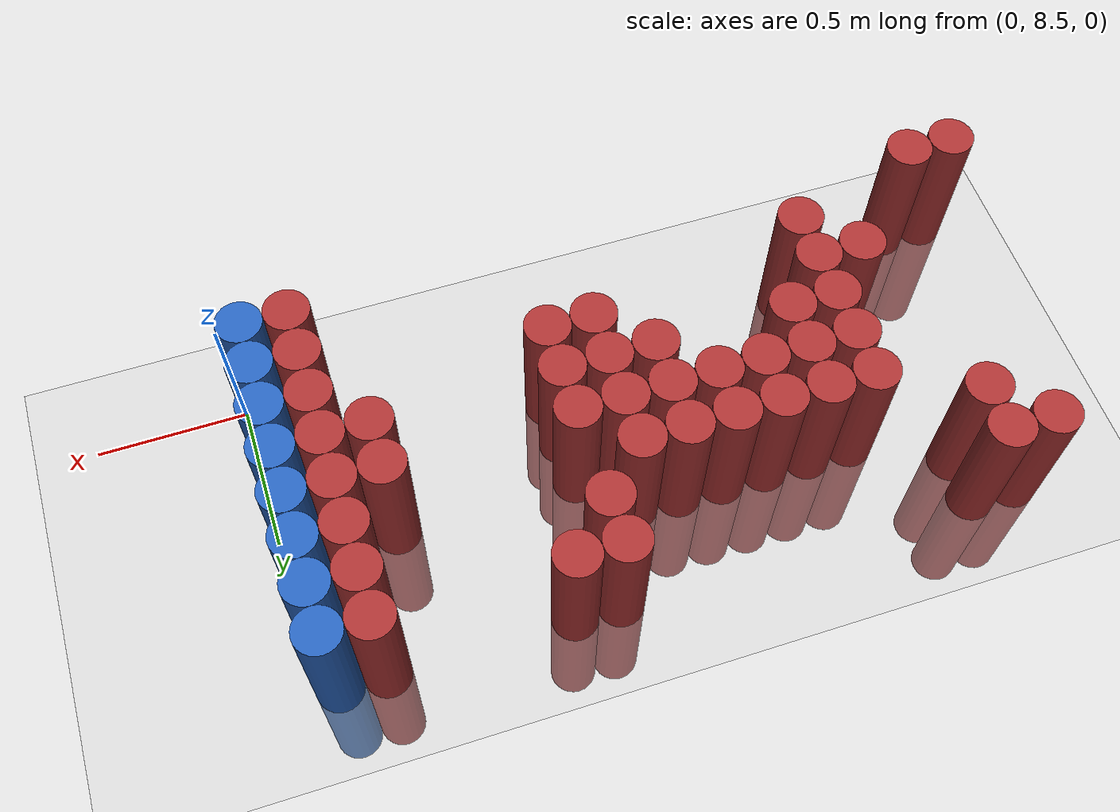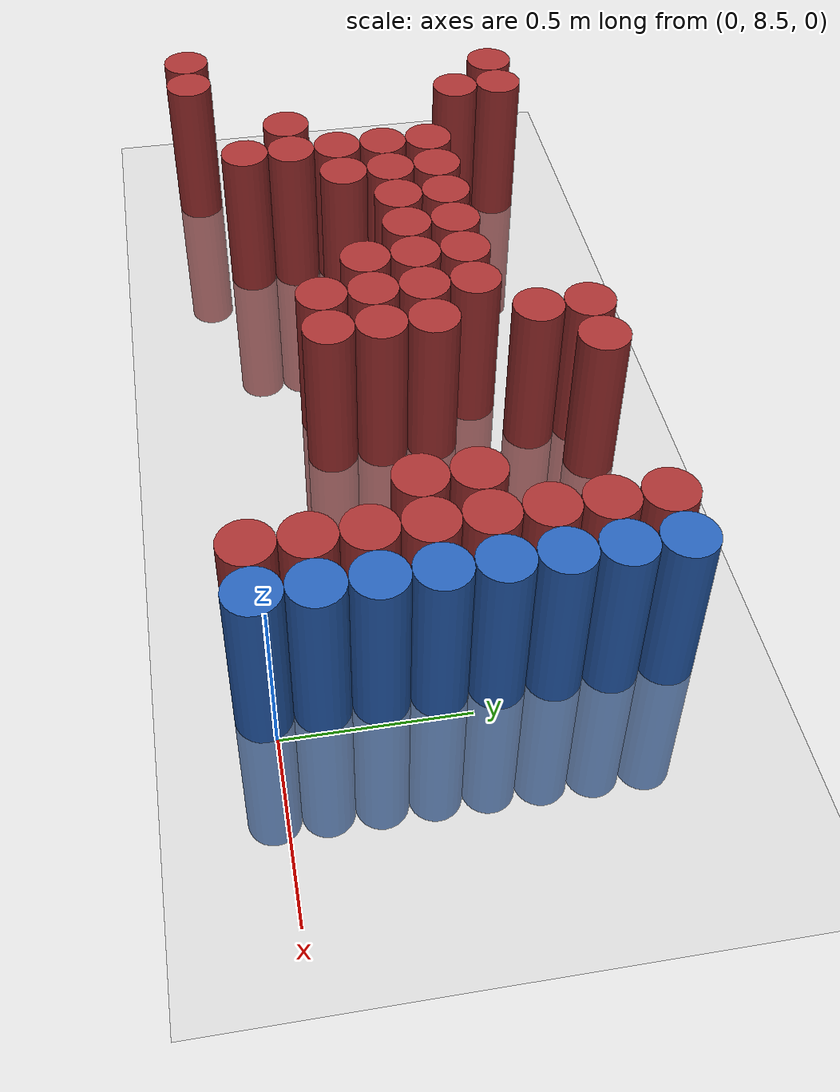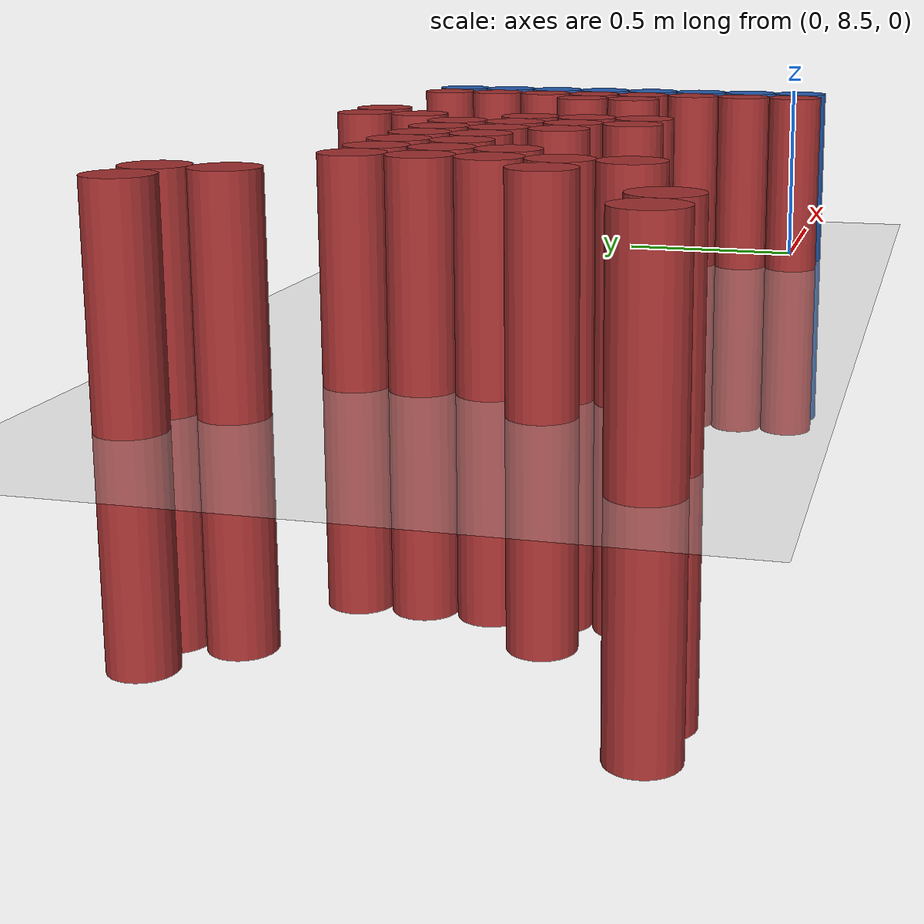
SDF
<sdf version="1.6">
 <world name="default">
  <model name="ground_plane">
   <static>1</static>
   <link name="link">
    <collision name="collision">
     <geometry><plane><normal>0 0 1</normal><size>100 100</size></plane></geometry>
     <surface><friction><ode><mu>100</mu><mu2>50</mu2></ode></friction></surface>
    </collision>
    <visual name="visual">
     <cast_shadows>0</cast_shadows>
     <geometry><plane><normal>0 0 1</normal><size>100 100</size></plane></geometry>
     <material>
      <script><uri>file://media/materials/scripts/gazebo.material</uri><name>Gazebo/Grey</name></script>
     </material>
    </visual>
   </link>
  </model>
  <model name="unit_cylinder_170">
   <static>1</static>
   <pose>-2.475000 8.475000 0.000000 0.000000 0.000000 0.000000</pose>
   <link name="link">
    <inertial>
     <mass>1</mass>
     <inertia><ixx>0.145833</ixx><ixy>0</ixy><ixz>0</ixz><iyy>0.145833</iyy><iyz>0</iyz><izz>0.125</izz></inertia>
    </inertial>
    <collision name="collision">
     <geometry><cylinder><radius>0.075000</radius><length>1</length></cylinder></geometry>
    </collision>
    <visual name="visual">
     <geometry><cylinder><radius>0.075000</radius><length>1</length></cylinder></geometry>
     <material>
      <ambient>0.648000 0.192000 0.192000 1</ambient>
      <diffuse>0.648000 0.192000 0.192000 1</diffuse>
     </material>
     <material>
      <script><name>Gazebo/Grey</name><uri>file://media/materials/scripts/gazebo.material</uri></script>
     </material>
    </visual>
   </link>
  </model>
  <model name="unit_cylinder_172">
   <static>1</static>
   <pose>-2.325000 8.475000 0.000000 0.000000 0.000000 0.000000</pose>
   <link name="link">
    <inertial>
     <mass>1</mass>
     <inertia><ixx>0.145833</ixx><ixy>0</ixy><ixz>0</ixz><iyy>0.145833</iyy><iyz>0</iyz><izz>0.125</izz></inertia>
    </inertial>
    <collision name="collision">
     <geometry><cylinder><radius>0.075000</radius><length>1</length></cylinder></geometry>
    </collision>
    <visual name="visual">
     <geometry><cylinder><radius>0.075000</radius><length>1</length></cylinder></geometry>
     <material>
      <ambient>0.648000 0.192000 0.192000 1</ambient>
      <diffuse>0.648000 0.192000 0.192000 1</diffuse>
     </material>
     <material>
      <script><name>Gazebo/Grey</name><uri>file://media/materials/scripts/gazebo.material</uri></script>
     </material>
    </visual>
   </link>
  </model>
  <model name="unit_cylinder_173">
   <static>1</static>
   <pose>-2.325000 9.525000 0.000000 0.000000 0.000000 0.000000</pose>
   <link name="link">
    <inertial>
     <mass>1</mass>
     <inertia><ixx>0.145833</ixx><ixy>0</ixy><ixz>0</ixz><iyy>0.145833</iyy><iyz>0</iyz><izz>0.125</izz></inertia>
    </inertial>
    <collision name="collision">
     <geometry><cylinder><radius>0.075000</radius><length>1</length></cylinder></geometry>
    </collision>
    <visual name="visual">
     <geometry><cylinder><radius>0.075000</radius><length>1</length></cylinder></geometry>
     <material>
      <ambient>0.648000 0.192000 0.192000 1</ambient>
      <diffuse>0.648000 0.192000 0.192000 1</diffuse>
     </material>
     <material>
      <script><name>Gazebo/Grey</name><uri>file://media/materials/scripts/gazebo.material</uri></script>
     </material>
    </visual>
   </link>
  </model>
  <model name="unit_cylinder_174">
   <static>1</static>
   <pose>-2.175000 9.375000 0.000000 0.000000 0.000000 0.000000</pose>
   <link name="link">
    <inertial>
     <mass>1</mass>
     <inertia><ixx>0.145833</ixx><ixy>0</ixy><ixz>0</ixz><iyy>0.145833</iyy><iyz>0</iyz><izz>0.125</izz></inertia>
    </inertial>
    <collision name="collision">
     <geometry><cylinder><radius>0.075000</radius><length>1</length></cylinder></geometry>
    </collision>
    <visual name="visual">
     <geometry><cylinder><radius>0.075000</radius><length>1</length></cylinder></geometry>
     <material>
      <ambient>0.648000 0.192000 0.192000 1</ambient>
      <diffuse>0.648000 0.192000 0.192000 1</diffuse>
     </material>
     <material>
      <script><name>Gazebo/Grey</name><uri>file://media/materials/scripts/gazebo.material</uri></script>
     </material>
    </visual>
   </link>
  </model>
  <model name="unit_cylinder_175">
   <static>1</static>
   <pose>-2.175000 9.525000 0.000000 0.000000 0.000000 0.000000</pose>
   <link name="link">
    <inertial>
     <mass>1</mass>
     <inertia><ixx>0.145833</ixx><ixy>0</ixy><ixz>0</ixz><iyy>0.145833</iyy><iyz>0</iyz><izz>0.125</izz></inertia>
    </inertial>
    <collision name="collision">
     <geometry><cylinder><radius>0.075000</radius><length>1</length></cylinder></geometry>
    </collision>
    <visual name="visual">
     <geometry><cylinder><radius>0.075000</radius><length>1</length></cylinder></geometry>
     <material>
      <ambient>0.648000 0.192000 0.192000 1</ambient>
      <diffuse>0.648000 0.192000 0.192000 1</diffuse>
     </material>
     <material>
      <script><name>Gazebo/Grey</name><uri>file://media/materials/scripts/gazebo.material</uri></script>
     </material>
    </visual>
   </link>
  </model>
  <model name="unit_cylinder_176">
   <static>1</static>
   <pose>-2.025000 8.775000 0.000000 0.000000 0.000000 0.000000</pose>
   <link name="link">
    <inertial>
     <mass>1</mass>
     <inertia><ixx>0.145833</ixx><ixy>0</ixy><ixz>0</ixz><iyy>0.145833</iyy><iyz>0</iyz><izz>0.125</izz></inertia>
    </inertial>
    <collision name="collision">
     <geometry><cylinder><radius>0.075000</radius><length>1</length></cylinder></geometry>
    </collision>
    <visual name="visual">
     <geometry><cylinder><radius>0.075000</radius><length>1</length></cylinder></geometry>
     <material>
      <ambient>0.648000 0.192000 0.192000 1</ambient>
      <diffuse>0.648000 0.192000 0.192000 1</diffuse>
     </material>
     <material>
      <script><name>Gazebo/Grey</name><uri>file://media/materials/scripts/gazebo.material</uri></script>
     </material>
    </visual>
   </link>
  </model>
  <model name="unit_cylinder_180">
   <static>1</static>
   <pose>-1.875000 8.625000 0.000000 0.000000 0.000000 0.000000</pose>
   <link name="link">
    <inertial>
     <mass>1</mass>
     <inertia><ixx>0.145833</ixx><ixy>0</ixy><ixz>0</ixz><iyy>0.145833</iyy><iyz>0</iyz><izz>0.125</izz></inertia>
    </inertial>
    <collision name="collision">
     <geometry><cylinder><radius>0.075000</radius><length>1</length></cylinder></geometry>
    </collision>
    <visual name="visual">
     <geometry><cylinder><radius>0.075000</radius><length>1</length></cylinder></geometry>
     <material>
      <ambient>0.648000 0.192000 0.192000 1</ambient>
      <diffuse>0.648000 0.192000 0.192000 1</diffuse>
     </material>
     <material>
      <script><name>Gazebo/Grey</name><uri>file://media/materials/scripts/gazebo.material</uri></script>
     </material>
    </visual>
   </link>
  </model>
  <model name="unit_cylinder_181">
   <static>1</static>
   <pose>-1.875000 8.775000 0.000000 0.000000 0.000000 0.000000</pose>
   <link name="link">
    <inertial>
     <mass>1</mass>
     <inertia><ixx>0.145833</ixx><ixy>0</ixy><ixz>0</ixz><iyy>0.145833</iyy><iyz>0</iyz><izz>0.125</izz></inertia>
    </inertial>
    <collision name="collision">
     <geometry><cylinder><radius>0.075000</radius><length>1</length></cylinder></geometry>
    </collision>
    <visual name="visual">
     <geometry><cylinder><radius>0.075000</radius><length>1</length></cylinder></geometry>
     <material>
      <ambient>0.648000 0.192000 0.192000 1</ambient>
      <diffuse>0.648000 0.192000 0.192000 1</diffuse>
     </material>
     <material>
      <script><name>Gazebo/Grey</name><uri>file://media/materials/scripts/gazebo.material</uri></script>
     </material>
    </visual>
   </link>
  </model>
  <model name="unit_cylinder_182">
   <static>1</static>
   <pose>-1.875000 8.925000 0.000000 0.000000 0.000000 0.000000</pose>
   <link name="link">
    <inertial>
     <mass>1</mass>
     <inertia><ixx>0.145833</ixx><ixy>0</ixy><ixz>0</ixz><iyy>0.145833</iyy><iyz>0</iyz><izz>0.125</izz></inertia>
    </inertial>
    <collision name="collision">
     <geometry><cylinder><radius>0.075000</radius><length>1</length></cylinder></geometry>
    </collision>
    <visual name="visual">
     <geometry><cylinder><radius>0.075000</radius><length>1</length></cylinder></geometry>
     <material>
      <ambient>0.648000 0.192000 0.192000 1</ambient>
      <diffuse>0.648000 0.192000 0.192000 1</diffuse>
     </material>
     <material>
      <script><name>Gazebo/Grey</name><uri>file://media/materials/scripts/gazebo.material</uri></script>
     </material>
    </visual>
   </link>
  </model>
  <model name="unit_cylinder_183">
   <static>1</static>
   <pose>-1.875000 9.075000 0.000000 0.000000 0.000000 0.000000</pose>
   <link name="link">
    <inertial>
     <mass>1</mass>
     <inertia><ixx>0.145833</ixx><ixy>0</ixy><ixz>0</ixz><iyy>0.145833</iyy><iyz>0</iyz><izz>0.125</izz></inertia>
    </inertial>
    <collision name="collision">
     <geometry><cylinder><radius>0.075000</radius><length>1</length></cylinder></geometry>
    </collision>
    <visual name="visual">
     <geometry><cylinder><radius>0.075000</radius><length>1</length></cylinder></geometry>
     <material>
      <ambient>0.648000 0.192000 0.192000 1</ambient>
      <diffuse>0.648000 0.192000 0.192000 1</diffuse>
     </material>
     <material>
      <script><name>Gazebo/Grey</name><uri>file://media/materials/scripts/gazebo.material</uri></script>
     </material>
    </visual>
   </link>
  </model>
  <model name="unit_cylinder_184">
   <static>1</static>
   <pose>-1.875000 9.225000 0.000000 0.000000 0.000000 0.000000</pose>
   <link name="link">
    <inertial>
     <mass>1</mass>
     <inertia><ixx>0.145833</ixx><ixy>0</ixy><ixz>0</ixz><iyy>0.145833</iyy><iyz>0</iyz><izz>0.125</izz></inertia>
    </inertial>
    <collision name="collision">
     <geometry><cylinder><radius>0.075000</radius><length>1</length></cylinder></geometry>
    </collision>
    <visual name="visual">
     <geometry><cylinder><radius>0.075000</radius><length>1</length></cylinder></geometry>
     <material>
      <ambient>0.648000 0.192000 0.192000 1</ambient>
      <diffuse>0.648000 0.192000 0.192000 1</diffuse>
     </material>
     <material>
      <script><name>Gazebo/Grey</name><uri>file://media/materials/scripts/gazebo.material</uri></script>
     </material>
    </visual>
   </link>
  </model>
  <model name="unit_cylinder_189">
   <static>1</static>
   <pose>-1.725000 8.925000 0.000000 0.000000 0.000000 0.000000</pose>
   <link name="link">
    <inertial>
     <mass>1</mass>
     <inertia><ixx>0.145833</ixx><ixy>0</ixy><ixz>0</ixz><iyy>0.145833</iyy><iyz>0</iyz><izz>0.125</izz></inertia>
    </inertial>
    <collision name="collision">
     <geometry><cylinder><radius>0.075000</radius><length>1</length></cylinder></geometry>
    </collision>
    <visual name="visual">
     <geometry><cylinder><radius>0.075000</radius><length>1</length></cylinder></geometry>
     <material>
      <ambient>0.648000 0.192000 0.192000 1</ambient>
      <diffuse>0.648000 0.192000 0.192000 1</diffuse>
     </material>
     <material>
      <script><name>Gazebo/Grey</name><uri>file://media/materials/scripts/gazebo.material</uri></script>
     </material>
    </visual>
   </link>
  </model>
  <model name="unit_cylinder_190">
   <static>1</static>
   <pose>-1.725000 9.075000 0.000000 0.000000 0.000000 0.000000</pose>
   <link name="link">
    <inertial>
     <mass>1</mass>
     <inertia><ixx>0.145833</ixx><ixy>0</ixy><ixz>0</ixz><iyy>0.145833</iyy><iyz>0</iyz><izz>0.125</izz></inertia>
    </inertial>
    <collision name="collision">
     <geometry><cylinder><radius>0.075000</radius><length>1</length></cylinder></geometry>
    </collision>
    <visual name="visual">
     <geometry><cylinder><radius>0.075000</radius><length>1</length></cylinder></geometry>
     <material>
      <ambient>0.648000 0.192000 0.192000 1</ambient>
      <diffuse>0.648000 0.192000 0.192000 1</diffuse>
     </material>
     <material>
      <script><name>Gazebo/Grey</name><uri>file://media/materials/scripts/gazebo.material</uri></script>
     </material>
    </visual>
   </link>
  </model>
  <model name="unit_cylinder_191">
   <static>1</static>
   <pose>-1.725000 9.225000 0.000000 0.000000 0.000000 0.000000</pose>
   <link name="link">
    <inertial>
     <mass>1</mass>
     <inertia><ixx>0.145833</ixx><ixy>0</ixy><ixz>0</ixz><iyy>0.145833</iyy><iyz>0</iyz><izz>0.125</izz></inertia>
    </inertial>
    <collision name="collision">
     <geometry><cylinder><radius>0.075000</radius><length>1</length></cylinder></geometry>
    </collision>
    <visual name="visual">
     <geometry><cylinder><radius>0.075000</radius><length>1</length></cylinder></geometry>
     <material>
      <ambient>0.648000 0.192000 0.192000 1</ambient>
      <diffuse>0.648000 0.192000 0.192000 1</diffuse>
     </material>
     <material>
      <script><name>Gazebo/Grey</name><uri>file://media/materials/scripts/gazebo.material</uri></script>
     </material>
    </visual>
   </link>
  </model>
  <model name="unit_cylinder_194">
   <static>1</static>
   <pose>-1.575000 9.075000 0.000000 0.000000 0.000000 0.000000</pose>
   <link name="link">
    <inertial>
     <mass>1</mass>
     <inertia><ixx>0.145833</ixx><ixy>0</ixy><ixz>0</ixz><iyy>0.145833</iyy><iyz>0</iyz><izz>0.125</izz></inertia>
    </inertial>
    <collision name="collision">
     <geometry><cylinder><radius>0.075000</radius><length>1</length></cylinder></geometry>
    </collision>
    <visual name="visual">
     <geometry><cylinder><radius>0.075000</radius><length>1</length></cylinder></geometry>
     <material>
      <ambient>0.648000 0.192000 0.192000 1</ambient>
      <diffuse>0.648000 0.192000 0.192000 1</diffuse>
     </material>
     <material>
      <script><name>Gazebo/Grey</name><uri>file://media/materials/scripts/gazebo.material</uri></script>
     </material>
    </visual>
   </link>
  </model>
  <model name="unit_cylinder_195">
   <static>1</static>
   <pose>-1.575000 9.225000 0.000000 0.000000 0.000000 0.000000</pose>
   <link name="link">
    <inertial>
     <mass>1</mass>
     <inertia><ixx>0.145833</ixx><ixy>0</ixy><ixz>0</ixz><iyy>0.145833</iyy><iyz>0</iyz><izz>0.125</izz></inertia>
    </inertial>
    <collision name="collision">
     <geometry><cylinder><radius>0.075000</radius><length>1</length></cylinder></geometry>
    </collision>
    <visual name="visual">
     <geometry><cylinder><radius>0.075000</radius><length>1</length></cylinder></geometry>
     <material>
      <ambient>0.648000 0.192000 0.192000 1</ambient>
      <diffuse>0.648000 0.192000 0.192000 1</diffuse>
     </material>
     <material>
      <script><name>Gazebo/Grey</name><uri>file://media/materials/scripts/gazebo.material</uri></script>
     </material>
    </visual>
   </link>
  </model>
  <model name="unit_cylinder_199">
   <static>1</static>
   <pose>-1.425000 9.075000 0.000000 0.000000 0.000000 0.000000</pose>
   <link name="link">
    <inertial>
     <mass>1</mass>
     <inertia><ixx>0.145833</ixx><ixy>0</ixy><ixz>0</ixz><iyy>0.145833</iyy><iyz>0</iyz><izz>0.125</izz></inertia>
    </inertial>
    <collision name="collision">
     <geometry><cylinder><radius>0.075000</radius><length>1</length></cylinder></geometry>
    </collision>
    <visual name="visual">
     <geometry><cylinder><radius>0.075000</radius><length>1</length></cylinder></geometry>
     <material>
      <ambient>0.648000 0.192000 0.192000 1</ambient>
      <diffuse>0.648000 0.192000 0.192000 1</diffuse>
     </material>
     <material>
      <script><name>Gazebo/Grey</name><uri>file://media/materials/scripts/gazebo.material</uri></script>
     </material>
    </visual>
   </link>
  </model>
  <model name="unit_cylinder_200">
   <static>1</static>
   <pose>-1.425000 9.225000 0.000000 0.000000 0.000000 0.000000</pose>
   <link name="link">
    <inertial>
     <mass>1</mass>
     <inertia><ixx>0.145833</ixx><ixy>0</ixy><ixz>0</ixz><iyy>0.145833</iyy><iyz>0</iyz><izz>0.125</izz></inertia>
    </inertial>
    <collision name="collision">
     <geometry><cylinder><radius>0.075000</radius><length>1</length></cylinder></geometry>
    </collision>
    <visual name="visual">
     <geometry><cylinder><radius>0.075000</radius><length>1</length></cylinder></geometry>
     <material>
      <ambient>0.648000 0.192000 0.192000 1</ambient>
      <diffuse>0.648000 0.192000 0.192000 1</diffuse>
     </material>
     <material>
      <script><name>Gazebo/Grey</name><uri>file://media/materials/scripts/gazebo.material</uri></script>
     </material>
    </visual>
   </link>
  </model>
  <model name="unit_cylinder_204">
   <static>1</static>
   <pose>-1.275000 8.925000 0.000000 0.000000 0.000000 0.000000</pose>
   <link name="link">
    <inertial>
     <mass>1</mass>
     <inertia><ixx>0.145833</ixx><ixy>0</ixy><ixz>0</ixz><iyy>0.145833</iyy><iyz>0</iyz><izz>0.125</izz></inertia>
    </inertial>
    <collision name="collision">
     <geometry><cylinder><radius>0.075000</radius><length>1</length></cylinder></geometry>
    </collision>
    <visual name="visual">
     <geometry><cylinder><radius>0.075000</radius><length>1</length></cylinder></geometry>
     <material>
      <ambient>0.648000 0.192000 0.192000 1</ambient>
      <diffuse>0.648000 0.192000 0.192000 1</diffuse>
     </material>
     <material>
      <script><name>Gazebo/Grey</name><uri>file://media/materials/scripts/gazebo.material</uri></script>
     </material>
    </visual>
   </link>
  </model>
  <model name="unit_cylinder_205">
   <static>1</static>
   <pose>-1.275000 9.075000 0.000000 0.000000 0.000000 0.000000</pose>
   <link name="link">
    <inertial>
     <mass>1</mass>
     <inertia><ixx>0.145833</ixx><ixy>0</ixy><ixz>0</ixz><iyy>0.145833</iyy><iyz>0</iyz><izz>0.125</izz></inertia>
    </inertial>
    <collision name="collision">
     <geometry><cylinder><radius>0.075000</radius><length>1</length></cylinder></geometry>
    </collision>
    <visual name="visual">
     <geometry><cylinder><radius>0.075000</radius><length>1</length></cylinder></geometry>
     <material>
      <ambient>0.648000 0.192000 0.192000 1</ambient>
      <diffuse>0.648000 0.192000 0.192000 1</diffuse>
     </material>
     <material>
      <script><name>Gazebo/Grey</name><uri>file://media/materials/scripts/gazebo.material</uri></script>
     </material>
    </visual>
   </link>
  </model>
  <model name="unit_cylinder_206">
   <static>1</static>
   <pose>-1.275000 9.225000 0.000000 0.000000 0.000000 0.000000</pose>
   <link name="link">
    <inertial>
     <mass>1</mass>
     <inertia><ixx>0.145833</ixx><ixy>0</ixy><ixz>0</ixz><iyy>0.145833</iyy><iyz>0</iyz><izz>0.125</izz></inertia>
    </inertial>
    <collision name="collision">
     <geometry><cylinder><radius>0.075000</radius><length>1</length></cylinder></geometry>
    </collision>
    <visual name="visual">
     <geometry><cylinder><radius>0.075000</radius><length>1</length></cylinder></geometry>
     <material>
      <ambient>0.648000 0.192000 0.192000 1</ambient>
      <diffuse>0.648000 0.192000 0.192000 1</diffuse>
     </material>
     <material>
      <script><name>Gazebo/Grey</name><uri>file://media/materials/scripts/gazebo.material</uri></script>
     </material>
    </visual>
   </link>
  </model>
  <model name="unit_cylinder_212">
   <static>1</static>
   <pose>-1.125000 8.775000 0.000000 0.000000 0.000000 0.000000</pose>
   <link name="link">
    <inertial>
     <mass>1</mass>
     <inertia><ixx>0.145833</ixx><ixy>0</ixy><ixz>0</ixz><iyy>0.145833</iyy><iyz>0</iyz><izz>0.125</izz></inertia>
    </inertial>
    <collision name="collision">
     <geometry><cylinder><radius>0.075000</radius><length>1</length></cylinder></geometry>
    </collision>
    <visual name="visual">
     <geometry><cylinder><radius>0.075000</radius><length>1</length></cylinder></geometry>
     <material>
      <ambient>0.648000 0.192000 0.192000 1</ambient>
      <diffuse>0.648000 0.192000 0.192000 1</diffuse>
     </material>
     <material>
      <script><name>Gazebo/Grey</name><uri>file://media/materials/scripts/gazebo.material</uri></script>
     </material>
    </visual>
   </link>
  </model>
  <model name="unit_cylinder_213">
   <static>1</static>
   <pose>-1.125000 8.925000 0.000000 0.000000 0.000000 0.000000</pose>
   <link name="link">
    <inertial>
     <mass>1</mass>
     <inertia><ixx>0.145833</ixx><ixy>0</ixy><ixz>0</ixz><iyy>0.145833</iyy><iyz>0</iyz><izz>0.125</izz></inertia>
    </inertial>
    <collision name="collision">
     <geometry><cylinder><radius>0.075000</radius><length>1</length></cylinder></geometry>
    </collision>
    <visual name="visual">
     <geometry><cylinder><radius>0.075000</radius><length>1</length></cylinder></geometry>
     <material>
      <ambient>0.648000 0.192000 0.192000 1</ambient>
      <diffuse>0.648000 0.192000 0.192000 1</diffuse>
     </material>
     <material>
      <script><name>Gazebo/Grey</name><uri>file://media/materials/scripts/gazebo.material</uri></script>
     </material>
    </visual>
   </link>
  </model>
  <model name="unit_cylinder_214">
   <static>1</static>
   <pose>-1.125000 9.075000 0.000000 0.000000 0.000000 0.000000</pose>
   <link name="link">
    <inertial>
     <mass>1</mass>
     <inertia><ixx>0.145833</ixx><ixy>0</ixy><ixz>0</ixz><iyy>0.145833</iyy><iyz>0</iyz><izz>0.125</izz></inertia>
    </inertial>
    <collision name="collision">
     <geometry><cylinder><radius>0.075000</radius><length>1</length></cylinder></geometry>
    </collision>
    <visual name="visual">
     <geometry><cylinder><radius>0.075000</radius><length>1</length></cylinder></geometry>
     <material>
      <ambient>0.648000 0.192000 0.192000 1</ambient>
      <diffuse>0.648000 0.192000 0.192000 1</diffuse>
     </material>
     <material>
      <script><name>Gazebo/Grey</name><uri>file://media/materials/scripts/gazebo.material</uri></script>
     </material>
    </visual>
   </link>
  </model>
  <model name="unit_cylinder_215">
   <static>1</static>
   <pose>-1.125000 9.225000 0.000000 0.000000 0.000000 0.000000</pose>
   <link name="link">
    <inertial>
     <mass>1</mass>
     <inertia><ixx>0.145833</ixx><ixy>0</ixy><ixz>0</ixz><iyy>0.145833</iyy><iyz>0</iyz><izz>0.125</izz></inertia>
    </inertial>
    <collision name="collision">
     <geometry><cylinder><radius>0.075000</radius><length>1</length></cylinder></geometry>
    </collision>
    <visual name="visual">
     <geometry><cylinder><radius>0.075000</radius><length>1</length></cylinder></geometry>
     <material>
      <ambient>0.648000 0.192000 0.192000 1</ambient>
      <diffuse>0.648000 0.192000 0.192000 1</diffuse>
     </material>
     <material>
      <script><name>Gazebo/Grey</name><uri>file://media/materials/scripts/gazebo.material</uri></script>
     </material>
    </visual>
   </link>
  </model>
  <model name="unit_cylinder_220">
   <static>1</static>
   <pose>-0.975000 8.775000 0.000000 0.000000 0.000000 0.000000</pose>
   <link name="link">
    <inertial>
     <mass>1</mass>
     <inertia><ixx>0.145833</ixx><ixy>0</ixy><ixz>0</ixz><iyy>0.145833</iyy><iyz>0</iyz><izz>0.125</izz></inertia>
    </inertial>
    <collision name="collision">
     <geometry><cylinder><radius>0.075000</radius><length>1</length></cylinder></geometry>
    </collision>
    <visual name="visual">
     <geometry><cylinder><radius>0.075000</radius><length>1</length></cylinder></geometry>
     <material>
      <ambient>0.648000 0.192000 0.192000 1</ambient>
      <diffuse>0.648000 0.192000 0.192000 1</diffuse>
     </material>
     <material>
      <script><name>Gazebo/Grey</name><uri>file://media/materials/scripts/gazebo.material</uri></script>
     </material>
    </visual>
   </link>
  </model>
  <model name="unit_cylinder_221">
   <static>1</static>
   <pose>-0.975000 8.925000 0.000000 0.000000 0.000000 0.000000</pose>
   <link name="link">
    <inertial>
     <mass>1</mass>
     <inertia><ixx>0.145833</ixx><ixy>0</ixy><ixz>0</ixz><iyy>0.145833</iyy><iyz>0</iyz><izz>0.125</izz></inertia>
    </inertial>
    <collision name="collision">
     <geometry><cylinder><radius>0.075000</radius><length>1</length></cylinder></geometry>
    </collision>
    <visual name="visual">
     <geometry><cylinder><radius>0.075000</radius><length>1</length></cylinder></geometry>
     <material>
      <ambient>0.648000 0.192000 0.192000 1</ambient>
      <diffuse>0.648000 0.192000 0.192000 1</diffuse>
     </material>
     <material>
      <script><name>Gazebo/Grey</name><uri>file://media/materials/scripts/gazebo.material</uri></script>
     </material>
    </visual>
   </link>
  </model>
  <model name="unit_cylinder_222">
   <static>1</static>
   <pose>-0.975000 9.075000 0.000000 0.000000 0.000000 0.000000</pose>
   <link name="link">
    <inertial>
     <mass>1</mass>
     <inertia><ixx>0.145833</ixx><ixy>0</ixy><ixz>0</ixz><iyy>0.145833</iyy><iyz>0</iyz><izz>0.125</izz></inertia>
    </inertial>
    <collision name="collision">
     <geometry><cylinder><radius>0.075000</radius><length>1</length></cylinder></geometry>
    </collision>
    <visual name="visual">
     <geometry><cylinder><radius>0.075000</radius><length>1</length></cylinder></geometry>
     <material>
      <ambient>0.648000 0.192000 0.192000 1</ambient>
      <diffuse>0.648000 0.192000 0.192000 1</diffuse>
     </material>
     <material>
      <script><name>Gazebo/Grey</name><uri>file://media/materials/scripts/gazebo.material</uri></script>
     </material>
    </visual>
   </link>
  </model>
  <model name="unit_cylinder_223">
   <static>1</static>
   <pose>-0.975000 9.375000 0.000000 0.000000 0.000000 0.000000</pose>
   <link name="link">
    <inertial>
     <mass>1</mass>
     <inertia><ixx>0.145833</ixx><ixy>0</ixy><ixz>0</ixz><iyy>0.145833</iyy><iyz>0</iyz><izz>0.125</izz></inertia>
    </inertial>
    <collision name="collision">
     <geometry><cylinder><radius>0.075000</radius><length>1</length></cylinder></geometry>
    </collision>
    <visual name="visual">
     <geometry><cylinder><radius>0.075000</radius><length>1</length></cylinder></geometry>
     <material>
      <ambient>0.648000 0.192000 0.192000 1</ambient>
      <diffuse>0.648000 0.192000 0.192000 1</diffuse>
     </material>
     <material>
      <script><name>Gazebo/Grey</name><uri>file://media/materials/scripts/gazebo.material</uri></script>
     </material>
    </visual>
   </link>
  </model>
  <model name="unit_cylinder_224">
   <static>1</static>
   <pose>-0.975000 9.525000 0.000000 0.000000 0.000000 0.000000</pose>
   <link name="link">
    <inertial>
     <mass>1</mass>
     <inertia><ixx>0.145833</ixx><ixy>0</ixy><ixz>0</ixz><iyy>0.145833</iyy><iyz>0</iyz><izz>0.125</izz></inertia>
    </inertial>
    <collision name="collision">
     <geometry><cylinder><radius>0.075000</radius><length>1</length></cylinder></geometry>
    </collision>
    <visual name="visual">
     <geometry><cylinder><radius>0.075000</radius><length>1</length></cylinder></geometry>
     <material>
      <ambient>0.648000 0.192000 0.192000 1</ambient>
      <diffuse>0.648000 0.192000 0.192000 1</diffuse>
     </material>
     <material>
      <script><name>Gazebo/Grey</name><uri>file://media/materials/scripts/gazebo.material</uri></script>
     </material>
    </visual>
   </link>
  </model>
  <model name="unit_cylinder_230">
   <static>1</static>
   <pose>-0.825000 9.525000 0.000000 0.000000 0.000000 0.000000</pose>
   <link name="link">
    <inertial>
     <mass>1</mass>
     <inertia><ixx>0.145833</ixx><ixy>0</ixy><ixz>0</ixz><iyy>0.145833</iyy><iyz>0</iyz><izz>0.125</izz></inertia>
    </inertial>
    <collision name="collision">
     <geometry><cylinder><radius>0.075000</radius><length>1</length></cylinder></geometry>
    </collision>
    <visual name="visual">
     <geometry><cylinder><radius>0.075000</radius><length>1</length></cylinder></geometry>
     <material>
      <ambient>0.648000 0.192000 0.192000 1</ambient>
      <diffuse>0.648000 0.192000 0.192000 1</diffuse>
     </material>
     <material>
      <script><name>Gazebo/Grey</name><uri>file://media/materials/scripts/gazebo.material</uri></script>
     </material>
    </visual>
   </link>
  </model>
  <model name="unit_cylinder_244">
   <static>1</static>
   <pose>-0.375000 8.925000 0.000000 0.000000 0.000000 0.000000</pose>
   <link name="link">
    <inertial>
     <mass>1</mass>
     <inertia><ixx>0.145833</ixx><ixy>0</ixy><ixz>0</ixz><iyy>0.145833</iyy><iyz>0</iyz><izz>0.125</izz></inertia>
    </inertial>
    <collision name="collision">
     <geometry><cylinder><radius>0.075000</radius><length>1</length></cylinder></geometry>
    </collision>
    <visual name="visual">
     <geometry><cylinder><radius>0.075000</radius><length>1</length></cylinder></geometry>
     <material>
      <ambient>0.648000 0.192000 0.192000 1</ambient>
      <diffuse>0.648000 0.192000 0.192000 1</diffuse>
     </material>
     <material>
      <script><name>Gazebo/Grey</name><uri>file://media/materials/scripts/gazebo.material</uri></script>
     </material>
    </visual>
   </link>
  </model>
  <model name="unit_cylinder_245">
   <static>1</static>
   <pose>-0.375000 9.075000 0.000000 0.000000 0.000000 0.000000</pose>
   <link name="link">
    <inertial>
     <mass>1</mass>
     <inertia><ixx>0.145833</ixx><ixy>0</ixy><ixz>0</ixz><iyy>0.145833</iyy><iyz>0</iyz><izz>0.125</izz></inertia>
    </inertial>
    <collision name="collision">
     <geometry><cylinder><radius>0.075000</radius><length>1</length></cylinder></geometry>
    </collision>
    <visual name="visual">
     <geometry><cylinder><radius>0.075000</radius><length>1</length></cylinder></geometry>
     <material>
      <ambient>0.648000 0.192000 0.192000 1</ambient>
      <diffuse>0.648000 0.192000 0.192000 1</diffuse>
     </material>
     <material>
      <script><name>Gazebo/Grey</name><uri>file://media/materials/scripts/gazebo.material</uri></script>
     </material>
    </visual>
   </link>
  </model>
  <model name="unit_cylinder_256">
   <static>1</static>
   <pose>-0.225000 8.475000 0.000000 0.000000 0.000000 0.000000</pose>
   <link name="link">
    <inertial>
     <mass>1</mass>
     <inertia><ixx>0.145833</ixx><ixy>0</ixy><ixz>0</ixz><iyy>0.145833</iyy><iyz>0</iyz><izz>0.125</izz></inertia>
    </inertial>
    <collision name="collision">
     <geometry><cylinder><radius>0.075000</radius><length>1</length></cylinder></geometry>
    </collision>
    <visual name="visual">
     <geometry><cylinder><radius>0.075000</radius><length>1</length></cylinder></geometry>
     <material>
      <ambient>0.648000 0.192000 0.192000 1</ambient>
      <diffuse>0.648000 0.192000 0.192000 1</diffuse>
     </material>
     <material>
      <script><name>Gazebo/Grey</name><uri>file://media/materials/scripts/gazebo.material</uri></script>
     </material>
    </visual>
   </link>
  </model>
  <model name="unit_cylinder_257">
   <static>1</static>
   <pose>-0.225000 8.625000 0.000000 0.000000 0.000000 0.000000</pose>
   <link name="link">
    <inertial>
     <mass>1</mass>
     <inertia><ixx>0.145833</ixx><ixy>0</ixy><ixz>0</ixz><iyy>0.145833</iyy><iyz>0</iyz><izz>0.125</izz></inertia>
    </inertial>
    <collision name="collision">
     <geometry><cylinder><radius>0.075000</radius><length>1</length></cylinder></geometry>
    </collision>
    <visual name="visual">
     <geometry><cylinder><radius>0.075000</radius><length>1</length></cylinder></geometry>
     <material>
      <ambient>0.648000 0.192000 0.192000 1</ambient>
      <diffuse>0.648000 0.192000 0.192000 1</diffuse>
     </material>
     <material>
      <script><name>Gazebo/Grey</name><uri>file://media/materials/scripts/gazebo.material</uri></script>
     </material>
    </visual>
   </link>
  </model>
  <model name="unit_cylinder_258">
   <static>1</static>
   <pose>-0.225000 8.775000 0.000000 0.000000 0.000000 0.000000</pose>
   <link name="link">
    <inertial>
     <mass>1</mass>
     <inertia><ixx>0.145833</ixx><ixy>0</ixy><ixz>0</ixz><iyy>0.145833</iyy><iyz>0</iyz><izz>0.125</izz></inertia>
    </inertial>
    <collision name="collision">
     <geometry><cylinder><radius>0.075000</radius><length>1</length></cylinder></geometry>
    </collision>
    <visual name="visual">
     <geometry><cylinder><radius>0.075000</radius><length>1</length></cylinder></geometry>
     <material>
      <ambient>0.648000 0.192000 0.192000 1</ambient>
      <diffuse>0.648000 0.192000 0.192000 1</diffuse>
     </material>
     <material>
      <script><name>Gazebo/Grey</name><uri>file://media/materials/scripts/gazebo.material</uri></script>
     </material>
    </visual>
   </link>
  </model>
  <model name="unit_cylinder_259">
   <static>1</static>
   <pose>-0.225000 8.925000 0.000000 0.000000 0.000000 0.000000</pose>
   <link name="link">
    <inertial>
     <mass>1</mass>
     <inertia><ixx>0.145833</ixx><ixy>0</ixy><ixz>0</ixz><iyy>0.145833</iyy><iyz>0</iyz><izz>0.125</izz></inertia>
    </inertial>
    <collision name="collision">
     <geometry><cylinder><radius>0.075000</radius><length>1</length></cylinder></geometry>
    </collision>
    <visual name="visual">
     <geometry><cylinder><radius>0.075000</radius><length>1</length></cylinder></geometry>
     <material>
      <ambient>0.648000 0.192000 0.192000 1</ambient>
      <diffuse>0.648000 0.192000 0.192000 1</diffuse>
     </material>
     <material>
      <script><name>Gazebo/Grey</name><uri>file://media/materials/scripts/gazebo.material</uri></script>
     </material>
    </visual>
   </link>
  </model>
  <model name="unit_cylinder_260">
   <static>1</static>
   <pose>-0.225000 9.075000 0.000000 0.000000 0.000000 0.000000</pose>
   <link name="link">
    <inertial>
     <mass>1</mass>
     <inertia><ixx>0.145833</ixx><ixy>0</ixy><ixz>0</ixz><iyy>0.145833</iyy><iyz>0</iyz><izz>0.125</izz></inertia>
    </inertial>
    <collision name="collision">
     <geometry><cylinder><radius>0.075000</radius><length>1</length></cylinder></geometry>
    </collision>
    <visual name="visual">
     <geometry><cylinder><radius>0.075000</radius><length>1</length></cylinder></geometry>
     <material>
      <ambient>0.648000 0.192000 0.192000 1</ambient>
      <diffuse>0.648000 0.192000 0.192000 1</diffuse>
     </material>
     <material>
      <script><name>Gazebo/Grey</name><uri>file://media/materials/scripts/gazebo.material</uri></script>
     </material>
    </visual>
   </link>
  </model>
  <model name="unit_cylinder_261">
   <static>1</static>
   <pose>-0.225000 9.225000 0.000000 0.000000 0.000000 0.000000</pose>
   <link name="link">
    <inertial>
     <mass>1</mass>
     <inertia><ixx>0.145833</ixx><ixy>0</ixy><ixz>0</ixz><iyy>0.145833</iyy><iyz>0</iyz><izz>0.125</izz></inertia>
    </inertial>
    <collision name="collision">
     <geometry><cylinder><radius>0.075000</radius><length>1</length></cylinder></geometry>
    </collision>
    <visual name="visual">
     <geometry><cylinder><radius>0.075000</radius><length>1</length></cylinder></geometry>
     <material>
      <ambient>0.648000 0.192000 0.192000 1</ambient>
      <diffuse>0.648000 0.192000 0.192000 1</diffuse>
     </material>
     <material>
      <script><name>Gazebo/Grey</name><uri>file://media/materials/scripts/gazebo.material</uri></script>
     </material>
    </visual>
   </link>
  </model>
  <model name="unit_cylinder_262">
   <static>1</static>
   <pose>-0.225000 9.375000 0.000000 0.000000 0.000000 0.000000</pose>
   <link name="link">
    <inertial>
     <mass>1</mass>
     <inertia><ixx>0.145833</ixx><ixy>0</ixy><ixz>0</ixz><iyy>0.145833</iyy><iyz>0</iyz><izz>0.125</izz></inertia>
    </inertial>
    <collision name="collision">
     <geometry><cylinder><radius>0.075000</radius><length>1</length></cylinder></geometry>
    </collision>
    <visual name="visual">
     <geometry><cylinder><radius>0.075000</radius><length>1</length></cylinder></geometry>
     <material>
      <ambient>0.648000 0.192000 0.192000 1</ambient>
      <diffuse>0.648000 0.192000 0.192000 1</diffuse>
     </material>
     <material>
      <script><name>Gazebo/Grey</name><uri>file://media/materials/scripts/gazebo.material</uri></script>
     </material>
    </visual>
   </link>
  </model>
  <model name="unit_cylinder_263">
   <static>1</static>
   <pose>-0.225000 9.525000 0.000000 0.000000 0.000000 0.000000</pose>
   <link name="link">
    <inertial>
     <mass>1</mass>
     <inertia><ixx>0.145833</ixx><ixy>0</ixy><ixz>0</ixz><iyy>0.145833</iyy><iyz>0</iyz><izz>0.125</izz></inertia>
    </inertial>
    <collision name="collision">
     <geometry><cylinder><radius>0.075000</radius><length>1</length></cylinder></geometry>
    </collision>
    <visual name="visual">
     <geometry><cylinder><radius>0.075000</radius><length>1</length></cylinder></geometry>
     <material>
      <ambient>0.648000 0.192000 0.192000 1</ambient>
      <diffuse>0.648000 0.192000 0.192000 1</diffuse>
     </material>
     <material>
      <script><name>Gazebo/Grey</name><uri>file://media/materials/scripts/gazebo.material</uri></script>
     </material>
    </visual>
   </link>
  </model>
  <model name="unit_cylinder_286">
   <static>1</static>
   <pose>-0.075000 8.475000 0.000000 0.000000 0.000000 0.000000</pose>
   <link name="link">
    <inertial>
     <mass>1</mass>
     <inertia><ixx>0.145833</ixx><ixy>0</ixy><ixz>0</ixz><iyy>0.145833</iyy><iyz>0</iyz><izz>0.125</izz></inertia>
    </inertial>
    <collision name="collision">
     <geometry><cylinder><radius>0.075000</radius><length>1</length></cylinder></geometry>
    </collision>
    <visual name="visual">
     <geometry><cylinder><radius>0.075000</radius><length>1</length></cylinder></geometry>
     <material>
      <ambient>0.152000 0.379000 0.720000 1</ambient>
      <diffuse>0.152000 0.379000 0.720000 1</diffuse>
     </material>
     <material>
      <script><name>Gazebo/Grey</name><uri>file://media/materials/scripts/gazebo.material</uri></script>
     </material>
    </visual>
   </link>
  </model>
  <model name="unit_cylinder_287">
   <static>1</static>
   <pose>-0.075000 8.625000 0.000000 0.000000 0.000000 0.000000</pose>
   <link name="link">
    <inertial>
     <mass>1</mass>
     <inertia><ixx>0.145833</ixx><ixy>0</ixy><ixz>0</ixz><iyy>0.145833</iyy><iyz>0</iyz><izz>0.125</izz></inertia>
    </inertial>
    <collision name="collision">
     <geometry><cylinder><radius>0.075000</radius><length>1</length></cylinder></geometry>
    </collision>
    <visual name="visual">
     <geometry><cylinder><radius>0.075000</radius><length>1</length></cylinder></geometry>
     <material>
      <ambient>0.152000 0.379000 0.720000 1</ambient>
      <diffuse>0.152000 0.379000 0.720000 1</diffuse>
     </material>
     <material>
      <script><name>Gazebo/Grey</name><uri>file://media/materials/scripts/gazebo.material</uri></script>
     </material>
    </visual>
   </link>
  </model>
  <model name="unit_cylinder_288">
   <static>1</static>
   <pose>-0.075000 8.775000 0.000000 0.000000 0.000000 0.000000</pose>
   <link name="link">
    <inertial>
     <mass>1</mass>
     <inertia><ixx>0.145833</ixx><ixy>0</ixy><ixz>0</ixz><iyy>0.145833</iyy><iyz>0</iyz><izz>0.125</izz></inertia>
    </inertial>
    <collision name="collision">
     <geometry><cylinder><radius>0.075000</radius><length>1</length></cylinder></geometry>
    </collision>
    <visual name="visual">
     <geometry><cylinder><radius>0.075000</radius><length>1</length></cylinder></geometry>
     <material>
      <ambient>0.152000 0.379000 0.720000 1</ambient>
      <diffuse>0.152000 0.379000 0.720000 1</diffuse>
     </material>
     <material>
      <script><name>Gazebo/Grey</name><uri>file://media/materials/scripts/gazebo.material</uri></script>
     </material>
    </visual>
   </link>
  </model>
  <model name="unit_cylinder_289">
   <static>1</static>
   <pose>-0.075000 8.925000 0.000000 0.000000 0.000000 0.000000</pose>
   <link name="link">
    <inertial>
     <mass>1</mass>
     <inertia><ixx>0.145833</ixx><ixy>0</ixy><ixz>0</ixz><iyy>0.145833</iyy><iyz>0</iyz><izz>0.125</izz></inertia>
    </inertial>
    <collision name="collision">
     <geometry><cylinder><radius>0.075000</radius><length>1</length></cylinder></geometry>
    </collision>
    <visual name="visual">
     <geometry><cylinder><radius>0.075000</radius><length>1</length></cylinder></geometry>
     <material>
      <ambient>0.152000 0.379000 0.720000 1</ambient>
      <diffuse>0.152000 0.379000 0.720000 1</diffuse>
     </material>
     <material>
      <script><name>Gazebo/Grey</name><uri>file://media/materials/scripts/gazebo.material</uri></script>
     </material>
    </visual>
   </link>
  </model>
  <model name="unit_cylinder_290">
   <static>1</static>
   <pose>-0.075000 9.075000 0.000000 0.000000 0.000000 0.000000</pose>
   <link name="link">
    <inertial>
     <mass>1</mass>
     <inertia><ixx>0.145833</ixx><ixy>0</ixy><ixz>0</ixz><iyy>0.145833</iyy><iyz>0</iyz><izz>0.125</izz></inertia>
    </inertial>
    <collision name="collision">
     <geometry><cylinder><radius>0.075000</radius><length>1</length></cylinder></geometry>
    </collision>
    <visual name="visual">
     <geometry><cylinder><radius>0.075000</radius><length>1</length></cylinder></geometry>
     <material>
      <ambient>0.152000 0.379000 0.720000 1</ambient>
      <diffuse>0.152000 0.379000 0.720000 1</diffuse>
     </material>
     <material>
      <script><name>Gazebo/Grey</name><uri>file://media/materials/scripts/gazebo.material</uri></script>
     </material>
    </visual>
   </link>
  </model>
  <model name="unit_cylinder_291">
   <static>1</static>
   <pose>-0.075000 9.225000 0.000000 0.000000 0.000000 0.000000</pose>
   <link name="link">
    <inertial>
     <mass>1</mass>
     <inertia><ixx>0.145833</ixx><ixy>0</ixy><ixz>0</ixz><iyy>0.145833</iyy><iyz>0</iyz><izz>0.125</izz></inertia>
    </inertial>
    <collision name="collision">
     <geometry><cylinder><radius>0.075000</radius><length>1</length></cylinder></geometry>
    </collision>
    <visual name="visual">
     <geometry><cylinder><radius>0.075000</radius><length>1</length></cylinder></geometry>
     <material>
      <ambient>0.152000 0.379000 0.720000 1</ambient>
      <diffuse>0.152000 0.379000 0.720000 1</diffuse>
     </material>
     <material>
      <script><name>Gazebo/Grey</name><uri>file://media/materials/scripts/gazebo.material</uri></script>
     </material>
    </visual>
   </link>
  </model>
  <model name="unit_cylinder_292">
   <static>1</static>
   <pose>-0.075000 9.375000 0.000000 0.000000 0.000000 0.000000</pose>
   <link name="link">
    <inertial>
     <mass>1</mass>
     <inertia><ixx>0.145833</ixx><ixy>0</ixy><ixz>0</ixz><iyy>0.145833</iyy><iyz>0</iyz><izz>0.125</izz></inertia>
    </inertial>
    <collision name="collision">
     <geometry><cylinder><radius>0.075000</radius><length>1</length></cylinder></geometry>
    </collision>
    <visual name="visual">
     <geometry><cylinder><radius>0.075000</radius><length>1</length></cylinder></geometry>
     <material>
      <ambient>0.152000 0.379000 0.720000 1</ambient>
      <diffuse>0.152000 0.379000 0.720000 1</diffuse>
     </material>
     <material>
      <script><name>Gazebo/Grey</name><uri>file://media/materials/scripts/gazebo.material</uri></script>
     </material>
    </visual>
   </link>
  </model>
  <model name="unit_cylinder_293">
   <static>1</static>
   <pose>-0.075000 9.525000 0.000000 0.000000 0.000000 0.000000</pose>
   <link name="link">
    <inertial>
     <mass>1</mass>
     <inertia><ixx>0.145833</ixx><ixy>0</ixy><ixz>0</ixz><iyy>0.145833</iyy><iyz>0</iyz><izz>0.125</izz></inertia>
    </inertial>
    <collision name="collision">
     <geometry><cylinder><radius>0.075000</radius><length>1</length></cylinder></geometry>
    </collision>
    <visual name="visual">
     <geometry><cylinder><radius>0.075000</radius><length>1</length></cylinder></geometry>
     <material>
      <ambient>0.152000 0.379000 0.720000 1</ambient>
      <diffuse>0.152000 0.379000 0.720000 1</diffuse>
     </material>
     <material>
      <script><name>Gazebo/Grey</name><uri>file://media/materials/scripts/gazebo.material</uri></script>
     </material>
    </visual>
   </link>
  </model>
 </world>
</sdf>
